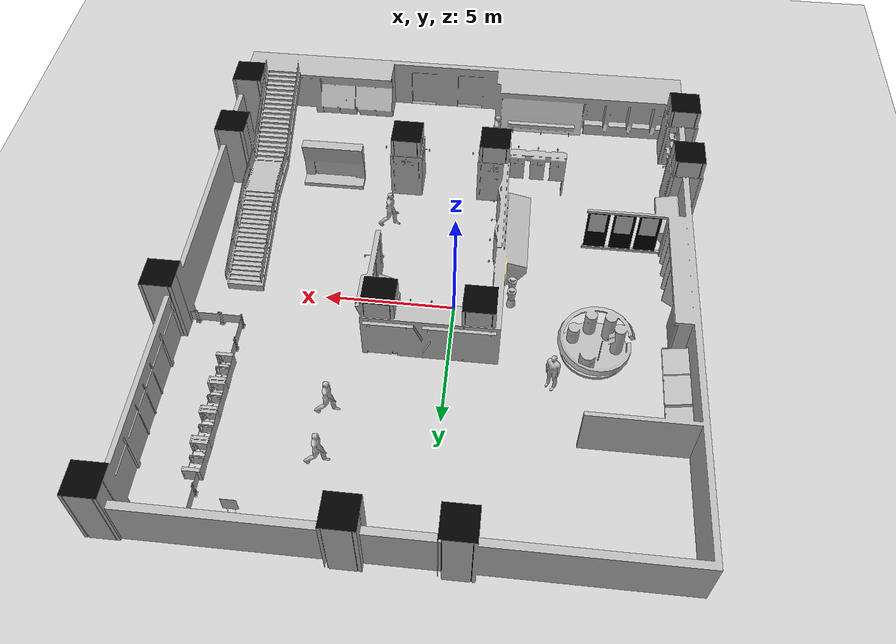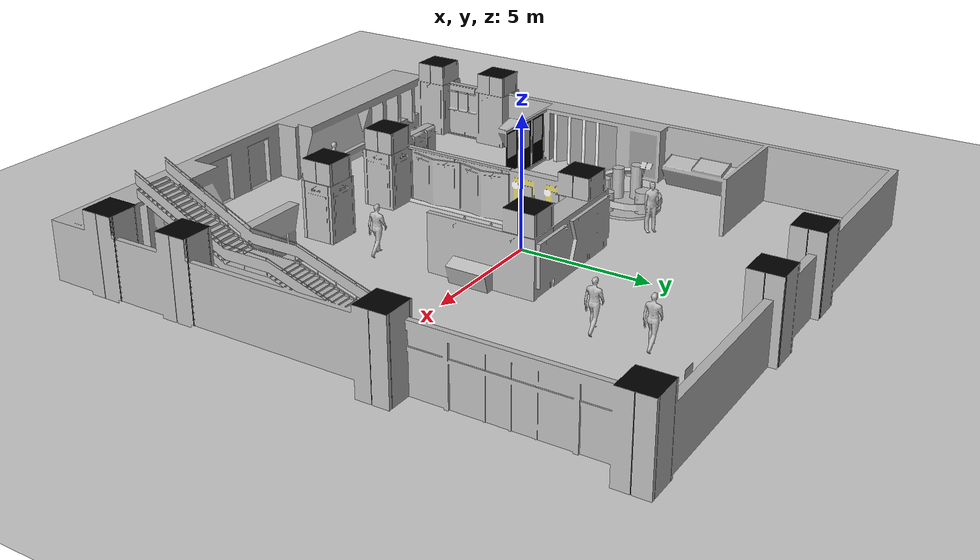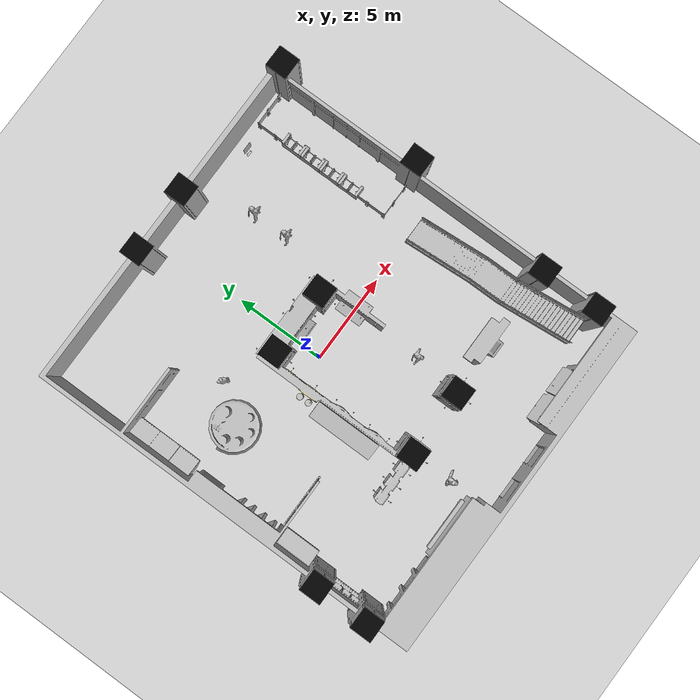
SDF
<sdf version="1.7">
 <world name="default">
  <plugin name="gazebo_ros_state" filename="libgazebo_ros_state.so">
   <ros><namespace>/gazebo</namespace></ros>
   <update_rate>30.0</update_rate>
  </plugin>
  <light name="sun" type="directional">
   <pose>0 0 10 0 -0 0</pose>
   <diffuse>0.8 0.8 0.8 1</diffuse>
   <specular>0.2 0.2 0.2 1</specular>
   <attenuation>
    <range>1000</range>
    <constant>0.9</constant>
    <linear>0.01</linear>
    <quadratic>0.001</quadratic>
   </attenuation>
   <direction>-0.5 0.1 -0.9</direction>
   <spot><inner_angle>0</inner_angle><outer_angle>0</outer_angle><falloff>0</falloff></spot>
  </light>
  <model name="ground_plane">
   <static>1</static>
   <link name="link">
    <collision name="collision">
     <geometry><plane><normal>0 0 1</normal><size>100 100</size></plane></geometry>
     <surface>
      <contact><collide_bitmask>65535</collide_bitmask></contact>
      <friction><ode><mu>100</mu><mu2>50</mu2></ode></friction>
     </surface>
    </collision>
    <visual name="visual">
     <cast_shadows>0</cast_shadows>
     <geometry><plane><normal>0 0 1</normal><size>100 100</size></plane></geometry>
     <material>
      <script><uri>file://media/materials/scripts/gazebo.material</uri><name>Gazebo/Grey</name></script>
     </material>
    </visual>
   </link>
  </model>
  <gravity>0 0 -9.8</gravity>
  <magnetic_field>6e-06 2.3e-05 -4.2e-05</magnetic_field>
  <atmosphere type="adiabatic"/>
  <physics type="ode">
   <max_step_size>0.001</max_step_size>
   <real_time_factor>1</real_time_factor>
   <real_time_update_rate>1000</real_time_update_rate>
  </physics>
  <scene><ambient>0.4 0.4 0.4 1</ambient><background>0.7 0.7 0.7 1</background><shadows>1</shadows></scene>
  <audio><device>default</device></audio>
  <spherical_coordinates>
   <surface_model>EARTH_WGS84</surface_model>
   <latitude_deg>0</latitude_deg>
   <longitude_deg>0</longitude_deg>
   <elevation>0</elevation>
   <heading_deg>0</heading_deg>
  </spherical_coordinates>
  <model name="iscas_museum">
   <link name="link">
    <inertial><mass>15</mass></inertial>
    <collision name="collision">
     <pose>0 0 0 0 0 -1.57</pose>
     <geometry><mesh><uri>model://iscas_museum/meshes/ISCAS_museum.dae</uri></mesh></geometry>
    </collision>
    <visual name="visual">
     <pose>0 0 0 0 0 -1.57</pose>
     <geometry><mesh><uri>model://iscas_museum/meshes/ISCAS_museum.dae</uri></mesh></geometry>
    </visual>
   </link>
   <static>1</static>
   <pose>0.409138 -1.07003 0 0 -0 0</pose>
  </model>
  <model name="person_standing">
   <link name="link">
    <inertial>
     <pose>0 -0.1 0.95 0 -0 0</pose>
     <mass>80</mass>
     <inertia><ixx>24.88</ixx><ixy>0</ixy><ixz>0</ixz><iyy>25.73</iyy><iyz>0</iyz><izz>2.48</izz></inertia>
    </inertial>
    <collision name="bottom">
     <pose>0 -0.1 0.01 0 -0 0</pose>
     <geometry><box><size>0.5 0.35 0.02</size></box></geometry>
    </collision>
    <collision name="person">
     <pose>0 0 0.02 0.04 -0 0</pose>
     <geometry><mesh><uri>model://person_standing/meshes/standing.dae</uri></mesh></geometry>
    </collision>
    <visual name="visual">
     <pose>0 0 0.02 0.04 -0 0</pose>
     <geometry><mesh><uri>model://person_standing/meshes/standing.dae</uri></mesh></geometry>
    </visual>
   </link>
   <pose>-3.839580 3.081364 -1e-06 -1e-06 1e-06 2.483263</pose>
  </model>
  <model name="person_walking_1">
   <link name="link">
    <inertial>
     <pose>0 0 0.95 0 -0 0</pose>
     <mass>80</mass>
     <inertia><ixx>27.82</ixx><ixy>0</ixy><ixz>0</ixz><iyy>24.88</iyy><iyz>0</iyz><izz>4.57</izz></inertia>
    </inertial>
    <collision name="bottom">
     <pose>0 0 0.01 0 -0 0</pose>
     <geometry><box><size>0.35 0.75 0.02</size></box></geometry>
     <surface><friction><ode><mu>0</mu><mu2>0</mu2></ode></friction></surface>
    </collision>
    <collision name="person">
     <pose>0 0 -0.02 0 -0 0</pose>
     <geometry><mesh><uri>model://person_walking/meshes/walking.dae</uri></mesh></geometry>
    </collision>
    <visual name="visual">
     <pose>0 0 -0.02 0 -0 0</pose>
     <geometry><mesh><uri>model://person_walking/meshes/walking.dae</uri></mesh></geometry>
    </visual>
   </link>
   <pose>3.0 -4.0 0.0 0.0 0.0 -1.57</pose>
  </model>
  <model name="person_walking_2">
   <link name="link">
    <inertial>
     <pose>0 0 0.95 0 -0 0</pose>
     <mass>80</mass>
     <inertia><ixx>27.82</ixx><ixy>0</ixy><ixz>0</ixz><iyy>24.88</iyy><iyz>0</iyz><izz>4.57</izz></inertia>
    </inertial>
    <collision name="bottom">
     <pose>0 0 0.01 0 -0 0</pose>
     <geometry><box><size>0.35 0.75 0.02</size></box></geometry>
     <surface><friction><ode><mu>0</mu><mu2>0</mu2></ode></friction></surface>
    </collision>
    <collision name="person">
     <pose>0 0 -0.02 0 -0 0</pose>
     <geometry><mesh><uri>model://person_walking/meshes/walking.dae</uri></mesh></geometry>
    </collision>
    <visual name="visual">
     <pose>0 0 -0.02 0 -0 0</pose>
     <geometry><mesh><uri>model://person_walking/meshes/walking.dae</uri></mesh></geometry>
    </visual>
   </link>
   <pose>-1.0 -9.0 0.0 0.0 0.0 -1.57</pose>
  </model>
  <model name="person_walking_3">
   <link name="link">
    <inertial>
     <pose>0 0 0.95 0 -0 0</pose>
     <mass>80</mass>
     <inertia><ixx>27.82</ixx><ixy>0</ixy><ixz>0</ixz><iyy>24.88</iyy><iyz>0</iyz><izz>4.57</izz></inertia>
    </inertial>
    <collision name="bottom">
     <pose>0 0 0.01 0 -0 0</pose>
     <geometry><box><size>0.35 0.75 0.02</size></box></geometry>
     <surface><friction><ode><mu>0</mu><mu2>0</mu2></ode></friction></surface>
    </collision>
    <collision name="person">
     <pose>0 0 -0.02 0 -0 0</pose>
     <geometry><mesh><uri>model://person_walking/meshes/walking.dae</uri></mesh></geometry>
    </collision>
    <visual name="visual">
     <pose>0 0 -0.02 0 -0 0</pose>
     <geometry><mesh><uri>model://person_walking/meshes/walking.dae</uri></mesh></geometry>
    </visual>
   </link>
   <pose>4.0 5.0 0.0 0.0 0.0 -1.57</pose>
  </model>
  <model name="person_walking_4">
   <link name="link">
    <inertial>
     <pose>0 0 0.95 0 -0 0</pose>
     <mass>80</mass>
     <inertia><ixx>27.82</ixx><ixy>0</ixy><ixz>0</ixz><iyy>24.88</iyy><iyz>0</iyz><izz>4.57</izz></inertia>
    </inertial>
    <collision name="bottom">
     <pose>0 0 0.01 0 -0 0</pose>
     <geometry><box><size>0.35 0.75 0.02</size></box></geometry>
     <surface><friction><ode><mu>0</mu><mu2>0</mu2></ode></friction></surface>
    </collision>
    <collision name="person">
     <pose>0 0 -0.02 0 -0 0</pose>
     <geometry><mesh><uri>model://person_walking/meshes/walking.dae</uri></mesh></geometry>
    </collision>
    <visual name="visual">
     <pose>0 0 -0.02 0 -0 0</pose>
     <geometry><mesh><uri>model://person_walking/meshes/walking.dae</uri></mesh></geometry>
    </visual>
   </link>
   <pose>4.0 7.0 0.0 0.0 0.0 -1.57</pose>
  </model>
 </world>
</sdf>
